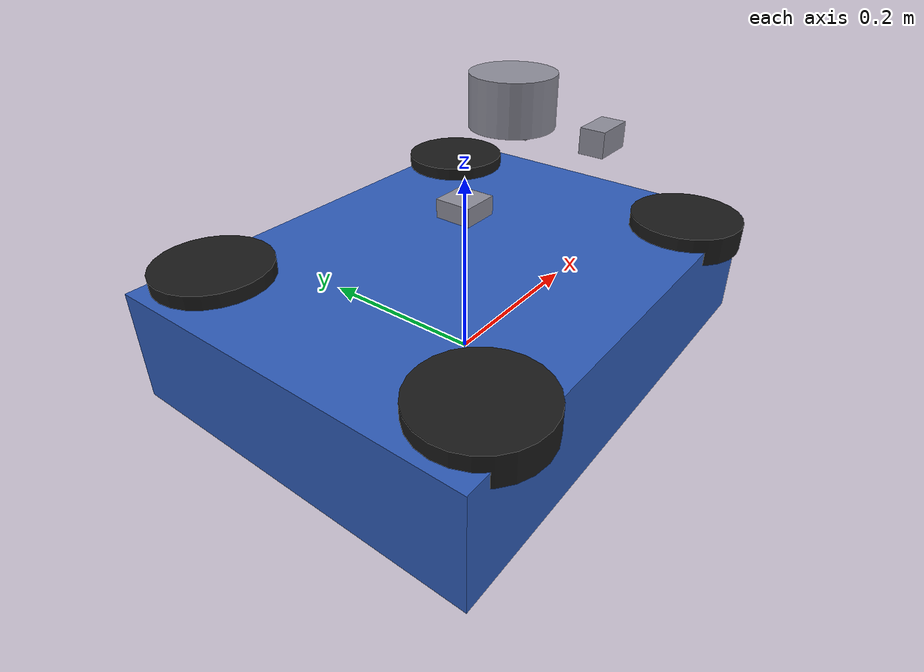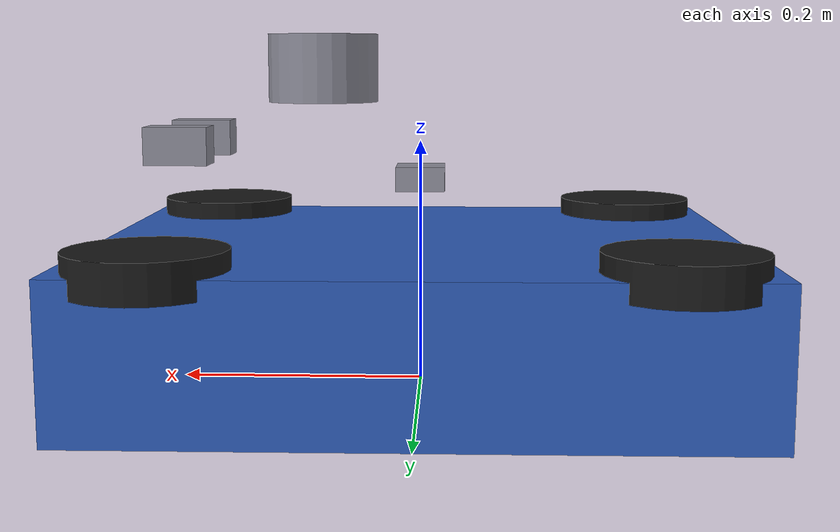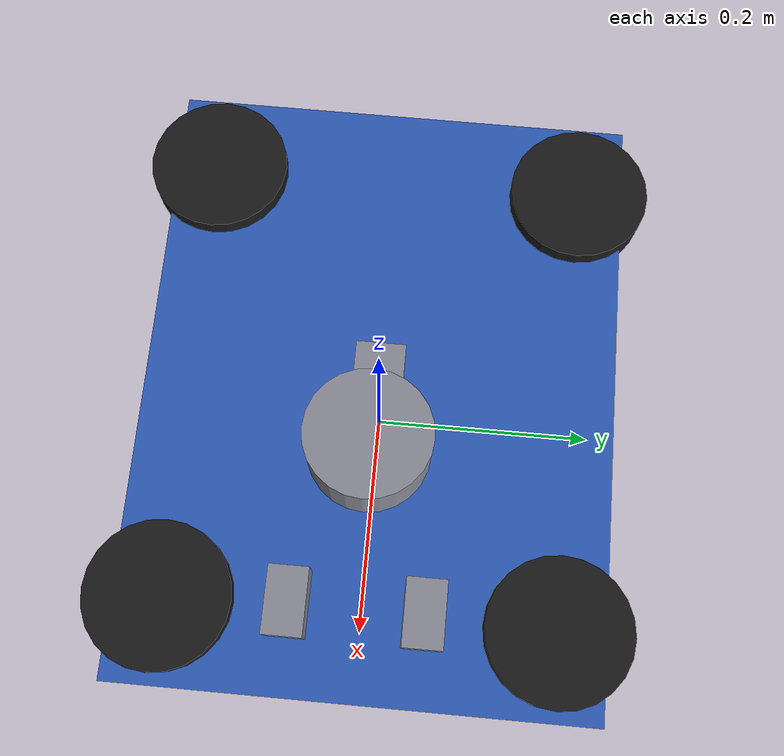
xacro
<?xml version="1.0"?>
<robot name="omni_robot" xmlns:xacro="http://ros.org/wiki/xacro">
  <!-- Basic geometric model for RViz and TF validation in Stage 3. -->
  <!-- Chassis dimensions -->
  <xacro:property name="base_length" value="0.52"/>
  <xacro:property name="base_width" value="0.40"/>
  <xacro:property name="base_height" value="0.12"/>
  <xacro:property name="base_mass" value="18.0"/>

  <!-- Wheel layout -->
  <xacro:property name="wheel_radius" value="0.06"/>
  <xacro:property name="wheel_width" value="0.03"/>
  <xacro:property name="wheel_mass" value="0.8"/>
  <xacro:property name="wheel_x_offset" value="0.19"/>
  <xacro:property name="wheel_y_offset" value="0.16"/>
  <xacro:property name="wheel_z_offset" value="${wheel_radius}"/>

  <!-- Sensor layout -->
  <xacro:property name="camera_box_length" value="0.05"/>
  <xacro:property name="camera_box_width" value="0.03"/>
  <xacro:property name="camera_box_height" value="0.03"/>
  <xacro:property name="camera_x_offset" value="0.19"/>
  <xacro:property name="camera_z_offset" value="0.14"/>
  <xacro:property name="camera_baseline" value="0.10"/>
  <xacro:property name="camera_image_width" value="640"/>
  <xacro:property name="camera_image_height" value="480"/>
  <xacro:property name="camera_update_rate" value="15.0"/>
  <xacro:property name="camera_horizontal_fov" value="1.047198"/>
  <!-- Derived once from width and horizontal FOV for stable camera_info output. -->
  <xacro:property name="camera_focal_length" value="554.26"/>
  <xacro:property name="camera_cx" value="319.5"/>
  <xacro:property name="camera_cy" value="239.5"/>
  <!-- Gazebo Classic on this Noetic setup does not export GAZEBO_PLUGIN_PATH by default. -->
  <xacro:property name="gazebo_ros_camera_plugin" value="/opt/ros/noetic/lib/libgazebo_ros_camera.so"/>
  <xacro:property name="camera_near_clip" value="0.05"/>
  <xacro:property name="camera_far_clip" value="10.0"/>
  <xacro:property name="imu_x_offset" value="0.0"/>
  <xacro:property name="imu_y_offset" value="0.0"/>
  <xacro:property name="imu_z_offset" value="0.11"/>
  <xacro:property name="lidar_radius" value="0.045"/>
  <xacro:property name="lidar_height" value="0.055"/>
  <xacro:property name="lidar_mass" value="0.20"/>
  <xacro:property name="lidar_x_offset" value="0.08"/>
  <xacro:property name="lidar_y_offset" value="0.0"/>
  <xacro:property name="lidar_z_offset" value="0.20"/>
  <xacro:property name="lidar_min_range" value="0.15"/>
  <xacro:property name="lidar_max_range" value="10.0"/>
  <xacro:property name="lidar_samples" value="720"/>
  <xacro:property name="lidar_update_rate" value="10.0"/>
  <xacro:property name="gazebo_ros_laser_plugin" value="/opt/ros/noetic/lib/libgazebo_ros_laser.so"/>

  <material name="body_blue">
    <color rgba="0.18 0.36 0.72 1.0"/>
  </material>
  <material name="wheel_black">
    <color rgba="0.10 0.10 0.10 1.0"/>
  </material>
  <material name="sensor_gray">
    <color rgba="0.55 0.55 0.60 1.0"/>
  </material>

  <xacro:macro name="wheel_link" params="wheel_name x y">
    <joint name="${wheel_name}_joint" type="continuous">
      <parent link="base_link"/>
      <child link="${wheel_name}"/>
      <origin xyz="${x} ${y} ${wheel_z_offset}" rpy="0 0 0"/>
      <axis xyz="0 0 1"/>
    </joint>

    <link name="${wheel_name}">
      <visual>
        <origin xyz="0 0 0" rpy="0 0 0"/>
        <geometry>
          <cylinder radius="${wheel_radius}" length="${wheel_width}"/>
        </geometry>
        <material name="wheel_black"/>
      </visual>
      <collision>
        <origin xyz="0 0 0" rpy="0 0 0"/>
        <geometry>
          <cylinder radius="${wheel_radius}" length="${wheel_width}"/>
        </geometry>
      </collision>
      <inertial>
        <origin xyz="0 0 0" rpy="0 0 0"/>
        <mass value="${wheel_mass}"/>
        <inertia ixx="0.0015" ixy="0.0" ixz="0.0" iyy="0.0015" iyz="0.0" izz="0.0012"/>
      </inertial>
    </link>

    <gazebo reference="${wheel_name}">
      <material>Gazebo/Black</material>
    </gazebo>
  </xacro:macro>

  <link name="base_footprint"/>

  <joint name="base_footprint_to_base_link" type="fixed">
    <parent link="base_footprint"/>
    <child link="base_link"/>
    <origin xyz="0 0 ${base_height / 2.0}" rpy="0 0 0"/>
  </joint>

  <link name="base_link">
    <visual>
      <origin xyz="0 0 0" rpy="0 0 0"/>
      <geometry>
        <box size="${base_length} ${base_width} ${base_height}"/>
      </geometry>
      <material name="body_blue"/>
    </visual>
    <collision>
      <origin xyz="0 0 0" rpy="0 0 0"/>
      <geometry>
        <box size="${base_length} ${base_width} ${base_height}"/>
      </geometry>
    </collision>
    <inertial>
      <origin xyz="0 0 0" rpy="0 0 0"/>
      <mass value="${base_mass}"/>
      <inertia ixx="0.42" ixy="0.0" ixz="0.0" iyy="0.62" iyz="0.0" izz="0.92"/>
    </inertial>
  </link>

  <gazebo reference="base_link">
    <material>Gazebo/Blue</material>
  </gazebo>

  <xacro:wheel_link wheel_name="front_left_wheel" x="${wheel_x_offset}" y="${wheel_y_offset}"/>
  <xacro:wheel_link wheel_name="front_right_wheel" x="${wheel_x_offset}" y="${-wheel_y_offset}"/>
  <xacro:wheel_link wheel_name="rear_left_wheel" x="${-wheel_x_offset}" y="${wheel_y_offset}"/>
  <xacro:wheel_link wheel_name="rear_right_wheel" x="${-wheel_x_offset}" y="${-wheel_y_offset}"/>

  <joint name="camera_left_joint" type="fixed">
    <parent link="base_link"/>
    <child link="camera_left"/>
    <origin xyz="${camera_x_offset} ${camera_baseline / 2.0} ${camera_z_offset}" rpy="0 0 0"/>
  </joint>

  <link name="camera_left">
    <visual>
      <geometry>
        <box size="${camera_box_length} ${camera_box_width} ${camera_box_height}"/>
      </geometry>
      <material name="sensor_gray"/>
    </visual>
    <collision>
      <geometry>
        <box size="${camera_box_length} ${camera_box_width} ${camera_box_height}"/>
      </geometry>
    </collision>
    <inertial>
      <origin xyz="0 0 0" rpy="0 0 0"/>
      <mass value="0.10"/>
      <inertia ixx="0.0001" ixy="0.0" ixz="0.0" iyy="0.0001" iyz="0.0" izz="0.0001"/>
    </inertial>
  </link>

  <joint name="camera_left_optical_joint" type="fixed">
    <parent link="camera_left"/>
    <child link="camera_left_optical"/>
    <origin xyz="0 0 0" rpy="${-pi / 2} 0 ${-pi / 2}"/>
  </joint>

  <link name="camera_left_optical"/>

  <joint name="camera_right_joint" type="fixed">
    <parent link="base_link"/>
    <child link="camera_right"/>
    <origin xyz="${camera_x_offset} ${-camera_baseline / 2.0} ${camera_z_offset}" rpy="0 0 0"/>
  </joint>

  <link name="camera_right">
    <visual>
      <geometry>
        <box size="${camera_box_length} ${camera_box_width} ${camera_box_height}"/>
      </geometry>
      <material name="sensor_gray"/>
    </visual>
    <collision>
      <geometry>
        <box size="${camera_box_length} ${camera_box_width} ${camera_box_height}"/>
      </geometry>
    </collision>
    <inertial>
      <origin xyz="0 0 0" rpy="0 0 0"/>
      <mass value="0.10"/>
      <inertia ixx="0.0001" ixy="0.0" ixz="0.0" iyy="0.0001" iyz="0.0" izz="0.0001"/>
    </inertial>
  </link>

  <joint name="camera_right_optical_joint" type="fixed">
    <parent link="camera_right"/>
    <child link="camera_right_optical"/>
    <origin xyz="0 0 0" rpy="${-pi / 2} 0 ${-pi / 2}"/>
  </joint>

  <link name="camera_right_optical"/>

  <joint name="imu_joint" type="fixed">
    <parent link="base_link"/>
    <child link="imu_link"/>
    <origin xyz="${imu_x_offset} ${imu_y_offset} ${imu_z_offset}" rpy="0 0 0"/>
  </joint>

  <link name="imu_link">
    <visual>
      <geometry>
        <box size="0.04 0.04 0.02"/>
      </geometry>
      <material name="sensor_gray"/>
    </visual>
    <collision>
      <geometry>
        <box size="0.04 0.04 0.02"/>
      </geometry>
    </collision>
    <inertial>
      <origin xyz="0 0 0" rpy="0 0 0"/>
      <mass value="0.05"/>
      <inertia ixx="0.00005" ixy="0.0" ixz="0.0" iyy="0.00005" iyz="0.0" izz="0.00005"/>
    </inertial>
  </link>

  <joint name="lidar_joint" type="fixed">
    <parent link="base_link"/>
    <child link="lidar_link"/>
    <origin xyz="${lidar_x_offset} ${lidar_y_offset} ${lidar_z_offset}" rpy="0 0 0"/>
  </joint>

  <link name="lidar_link">
    <visual>
      <origin xyz="0 0 0" rpy="0 0 0"/>
      <geometry>
        <cylinder radius="${lidar_radius}" length="${lidar_height}"/>
      </geometry>
      <material name="sensor_gray"/>
    </visual>
    <collision>
      <origin xyz="0 0 0" rpy="0 0 0"/>
      <geometry>
        <cylinder radius="${lidar_radius}" length="${lidar_height}"/>
      </geometry>
    </collision>
    <inertial>
      <origin xyz="0 0 0" rpy="0 0 0"/>
      <mass value="${lidar_mass}"/>
      <inertia ixx="0.00018" ixy="0.0" ixz="0.0" iyy="0.00018" iyz="0.0" izz="0.00020"/>
    </inertial>
  </link>

  <gazebo reference="lidar_link">
    <material>Gazebo/Grey</material>
  </gazebo>

  <!-- Gazebo camera sensors publish raw stereo topics for the processing pipeline. -->
  <gazebo reference="camera_left">
    <sensor type="camera" name="left_camera_sensor">
      <always_on>true</always_on>
      <visualize>false</visualize>
      <update_rate>${camera_update_rate}</update_rate>
      <camera>
        <horizontal_fov>${camera_horizontal_fov}</horizontal_fov>
        <image>
          <width>${camera_image_width}</width>
          <height>${camera_image_height}</height>
          <format>R8G8B8</format>
        </image>
        <clip>
          <near>${camera_near_clip}</near>
          <far>${camera_far_clip}</far>
        </clip>
        <distortion>
          <k1>0.0</k1>
          <k2>0.0</k2>
          <k3>0.0</k3>
          <p1>0.0</p1>
          <p2>0.0</p2>
          <center>0.5 0.5</center>
        </distortion>
      </camera>
      <plugin name="left_camera_controller" filename="${gazebo_ros_camera_plugin}">
        <alwaysOn>true</alwaysOn>
        <updateRate>${camera_update_rate}</updateRate>
        <cameraName>stereo/left</cameraName>
        <imageTopicName>image_raw</imageTopicName>
        <cameraInfoTopicName>camera_info</cameraInfoTopicName>
        <frameName>camera_left_optical</frameName>
        <hackBaseline>0.0</hackBaseline>
        <Cx>${camera_cx}</Cx>
        <CxPrime>${camera_cx}</CxPrime>
        <Cy>${camera_cy}</Cy>
        <focalLength>${camera_focal_length}</focalLength>
        <distortionK1>0.0</distortionK1>
        <distortionK2>0.0</distortionK2>
        <distortionK3>0.0</distortionK3>
        <distortionT1>0.0</distortionT1>
        <distortionT2>0.0</distortionT2>
      </plugin>
    </sensor>
  </gazebo>

  <gazebo reference="camera_right">
    <sensor type="camera" name="right_camera_sensor">
      <always_on>true</always_on>
      <visualize>false</visualize>
      <update_rate>${camera_update_rate}</update_rate>
      <camera>
        <horizontal_fov>${camera_horizontal_fov}</horizontal_fov>
        <image>
          <width>${camera_image_width}</width>
          <height>${camera_image_height}</height>
          <format>R8G8B8</format>
        </image>
        <clip>
          <near>${camera_near_clip}</near>
          <far>${camera_far_clip}</far>
        </clip>
        <distortion>
          <k1>0.0</k1>
          <k2>0.0</k2>
          <k3>0.0</k3>
          <p1>0.0</p1>
          <p2>0.0</p2>
          <center>0.5 0.5</center>
        </distortion>
      </camera>
      <plugin name="right_camera_controller" filename="${gazebo_ros_camera_plugin}">
        <alwaysOn>true</alwaysOn>
        <updateRate>${camera_update_rate}</updateRate>
        <cameraName>stereo/right</cameraName>
        <imageTopicName>image_raw</imageTopicName>
        <cameraInfoTopicName>camera_info</cameraInfoTopicName>
        <frameName>camera_right_optical</frameName>
        <hackBaseline>${camera_baseline}</hackBaseline>
        <Cx>${camera_cx}</Cx>
        <CxPrime>${camera_cx}</CxPrime>
        <Cy>${camera_cy}</Cy>
        <focalLength>${camera_focal_length}</focalLength>
        <distortionK1>0.0</distortionK1>
        <distortionK2>0.0</distortionK2>
        <distortionK3>0.0</distortionK3>
        <distortionT1>0.0</distortionT1>
        <distortionT2>0.0</distortionT2>
      </plugin>
    </sensor>
  </gazebo>

  <!-- Simulated 2D planar LiDAR for Stage 9 SLAM/navigation baseline experiments. -->
  <gazebo reference="lidar_link">
    <sensor type="ray" name="lidar_2d_sensor">
      <always_on>true</always_on>
      <visualize>true</visualize>
      <update_rate>${lidar_update_rate}</update_rate>
      <ray>
        <scan>
          <horizontal>
            <samples>${lidar_samples}</samples>
            <resolution>1</resolution>
            <min_angle>${-pi}</min_angle>
            <max_angle>${pi}</max_angle>
          </horizontal>
        </scan>
        <range>
          <min>${lidar_min_range}</min>
          <max>${lidar_max_range}</max>
          <resolution>0.01</resolution>
        </range>
        <noise>
          <type>gaussian</type>
          <mean>0.0</mean>
          <stddev>0.01</stddev>
        </noise>
      </ray>
      <plugin name="lidar_2d_controller" filename="${gazebo_ros_laser_plugin}">
        <topicName>/lidar/scan</topicName>
        <frameName>lidar_link</frameName>
      </plugin>
    </sensor>
  </gazebo>
</robot>
